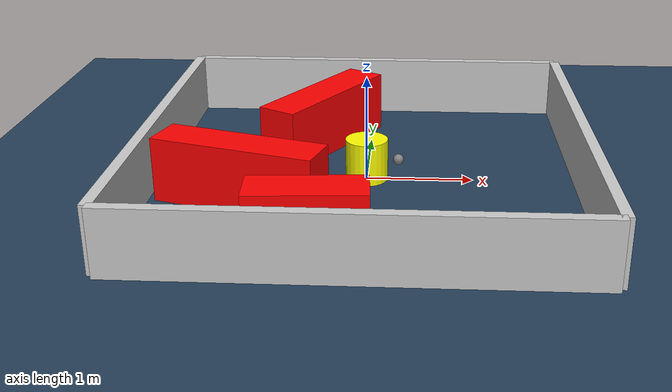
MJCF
<?xml version="1.0" ?>
<mujoco model="generated_environment">
  <option timestep="0.01" integrator="RK4" cone="elliptic"/>
  <default>
    <geom density="1"/>
  </default>
  <asset>
    <texture builtin="gradient" height="3072" rgb1="0.3 0.5 0.7" rgb2="0 0 0" type="skybox" width="512"/>
    <texture builtin="checker" height="300" mark="edge" markrgb="0.8 0.8 0.8" name="groundplane" rgb1="0.2 0.3 0.4" rgb2="0.1 0.2 0.3" type="2d" width="300"/>
    <material name="groundplane" reflectance="0.2" texrepeat="5 5" texture="groundplane" texuniform="true"/>
    <material name="robot" rgba="0.0 1.0 0.0 1"/>
  </asset>
  <worldbody>
    <light dir="0 0 -1" directional="true" pos="0 0 1.5"/>
    <geom condim="4" friction="1.0 0.005 0.001" material="groundplane" name="floor" size="0 0 0.05" type="plane"/>
    <body name="walls">
      <geom name="wall_1" condim="4" pos="-2.0 0.0 0.3" rgba="0.800000011920929 0.800000011920929 0.800000011920929 1.0" size="0.05 2.0 0.3" type="box"/>
      <geom name="wall_2" condim="4" pos="2.0 0.0 0.3" rgba="0.800000011920929 0.800000011920929 0.800000011920929 1.0" size="0.05 2.0 0.3" type="box"/>
      <geom name="wall_3" condim="4" pos="0.0 -2.0 0.3" rgba="0.800000011920929 0.800000011920929 0.800000011920929 1.0" size="2.0 0.05 0.3" type="box"/>
      <geom name="wall_4" condim="4" pos="0.0 2.0 0.3" rgba="0.800000011920929 0.800000011920929 0.800000011920929 1.0" size="2.0 0.05 0.3" type="box"/>
    </body>
    <body name="robot">
      <joint name="joint_x" type="slide" pos="0 0 0" axis="1 0 0"/>
      <joint name="joint_y" type="slide" pos="0 0 0" axis="0 1 0"/>
      <geom name="robot" type="sphere" pos="0.3 0.0 0.2" size="0.05" mass="5." friction="1.0 0.005 0.0001" condim="4" rgba="0.5 0.5 0.5 1.0"/>
      <site name="sensor_ball"/>
    </body>
    <body name="obstacle_movable_1">
      <geom name="obstacle_movable_1" condim="4" pos="0.0 0.0 0.2" euler="0 0 0.0" friction="1.0 0.005 0.001" rgba="1.0 1.0 0.0 1.0" size="0.2 0.2 0.0" type="cylinder" mass="0.1"/>
      <joint type="free"/>
    </body>
    <body name="obstacle_2_static">
      <geom name="obstacle_2_static" condim="4" pos="-1.096033543594687 -0.6382653250680206 0.3" euler="0 0 343.045550107442" friction="1.0 0.005 0.001" rgba="1 0 0 1" size="0.7706620935800375 0.2 0.3" type="box"/>
    </body>
    <body name="obstacle_3_static">
      <geom name="obstacle_3_static" condim="4" pos="-0.486192209629135 0.8519966270282391 0.3" euler="0 0 239.3778384964985" friction="1.0 0.005 0.001" rgba="1 0 0 1" size="0.7739410963551274 0.2 0.3" type="box"/>
    </body>
    <body name="obstacle_4_static">
      <geom name="obstacle_4_static" condim="4" pos="-0.3954795974114307 -1.5461198320550686 0.3" euler="0 0 3.5769305567404297" friction="1.0 0.005 0.001" rgba="1 0 0 1" size="0.5003858324074744 0.2 0.3" type="box"/>
    </body>
  </worldbody>
  <actuator>
    <motor name="actuator_x" joint="joint_x" gear="1" ctrlrange="-1 1"/>
    <motor name="actuator_y" joint="joint_y" gear="1" ctrlrange="-1 1"/>
  </actuator>
</mujoco>
